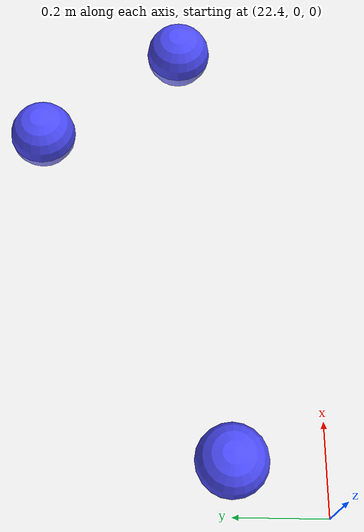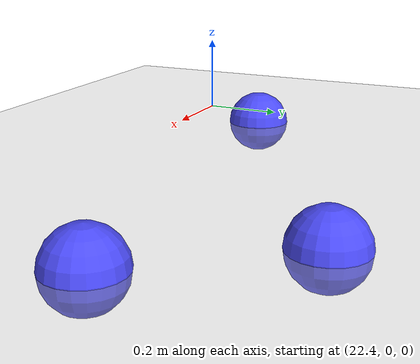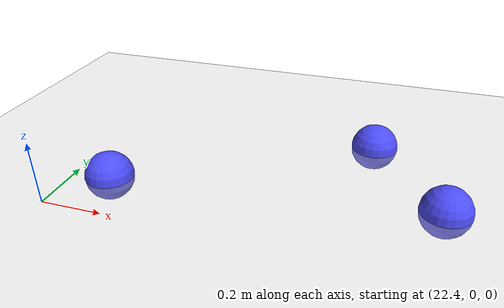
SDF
<sdf version="1.7">
 <world name="default">
  <model name="ground_plane">
   <static>1</static>
   <link name="link">
    <collision name="collision">
     <geometry><plane><normal>0 0 1</normal><size>100 100</size></plane></geometry>
     <surface>
      <contact><collide_bitmask>65535</collide_bitmask></contact>
      <friction><ode><mu>100</mu><mu2>50</mu2></ode></friction>
     </surface>
    </collision>
    <visual name="visual">
     <cast_shadows>0</cast_shadows>
     <geometry><plane><normal>0 0 1</normal><size>100 100</size></plane></geometry>
     <material>
      <script><uri>file://media/materials/scripts/gazebo.material</uri><name>Gazebo/Grey</name></script>
     </material>
    </visual>
   </link>
  </model>
  <model name="seed_blue_215">
   <link name="link">
    <inertial>
     <mass>1</mass>
     <inertia><ixx>0.1</ixx><ixy>0</ixy><ixz>0</ixz><iyy>0.1</iyy><iyz>0</iyz><izz>0.1</izz></inertia>
    </inertial>
    <visual name="visual">
     <geometry><sphere><radius>0.08</radius></sphere></geometry>
     <material>
      <script><name>Gazebo/Grey</name><uri>file://media/materials/scripts/gazebo.material</uri></script>
      <shader type="pixel"><normal_map>__default__</normal_map></shader>
      <ambient>0.3 0.3 1 1</ambient>
      <diffuse>0.7 0.7 0.7 1</diffuse>
      <specular>0.01 0.01 0.01 1</specular>
      <emissive>0 0 0 1</emissive>
     </material>
    </visual>
    <collision name="collision">
     <geometry><sphere><radius>0.0005</radius></sphere></geometry>
     <surface>
      <friction>
       <ode><mu>1</mu><mu2>1</mu2><fdir1>0 0 0</fdir1><slip1>0</slip1><slip2>0</slip2></ode>
       <torsional>
        <coefficient>1</coefficient>
        <patch_radius>0</patch_radius>
        <surface_radius>0</surface_radius>
        <use_patch_radius>1</use_patch_radius>
        <ode><slip>0</slip></ode>
       </torsional>
      </friction>
      <bounce><restitution_coefficient>0</restitution_coefficient><threshold>1e+06</threshold></bounce>
      <contact>
       <collide_without_contact>0</collide_without_contact>
       <collide_without_contact_bitmask>1</collide_without_contact_bitmask>
       <collide_bitmask>1</collide_bitmask>
       <ode>
        <soft_cfm>0</soft_cfm>
        <soft_erp>0.2</soft_erp>
        <kp>1e+13</kp>
        <kd>1</kd>
        <max_vel>0.01</max_vel>
        <min_depth>0</min_depth>
       </ode>
       <bullet>
        <split_impulse>1</split_impulse>
        <split_impulse_penetration_threshold>-0.01</split_impulse_penetration_threshold>
        <soft_cfm>0</soft_cfm>
        <soft_erp>0.2</soft_erp>
        <kp>1e+13</kp>
        <kd>1</kd>
       </bullet>
      </contact>
     </surface>
    </collision>
   </link>
   <static>0</static>
   <pose>23.317 0.647641 0.0005 0 -0 0</pose>
  </model>
  <model name="seed_blue_218">
   <link name="link">
    <inertial>
     <mass>1</mass>
     <inertia><ixx>0.1</ixx><ixy>0</ixy><ixz>0</ixz><iyy>0.1</iyy><iyz>0</iyz><izz>0.1</izz></inertia>
    </inertial>
    <visual name="visual">
     <geometry><sphere><radius>0.08</radius></sphere></geometry>
     <material>
      <script><name>Gazebo/Grey</name><uri>file://media/materials/scripts/gazebo.material</uri></script>
      <shader type="pixel"><normal_map>__default__</normal_map></shader>
      <ambient>0.3 0.3 1 1</ambient>
      <diffuse>0.7 0.7 0.7 1</diffuse>
      <specular>0.01 0.01 0.01 1</specular>
      <emissive>0 0 0 1</emissive>
     </material>
    </visual>
    <collision name="collision">
     <geometry><sphere><radius>0.0005</radius></sphere></geometry>
     <surface>
      <friction>
       <ode><mu>1</mu><mu2>1</mu2><fdir1>0 0 0</fdir1><slip1>0</slip1><slip2>0</slip2></ode>
       <torsional>
        <coefficient>1</coefficient>
        <patch_radius>0</patch_radius>
        <surface_radius>0</surface_radius>
        <use_patch_radius>1</use_patch_radius>
        <ode><slip>0</slip></ode>
       </torsional>
      </friction>
      <bounce><restitution_coefficient>0</restitution_coefficient><threshold>1e+06</threshold></bounce>
      <contact>
       <collide_without_contact>0</collide_without_contact>
       <collide_without_contact_bitmask>1</collide_without_contact_bitmask>
       <collide_bitmask>1</collide_bitmask>
       <ode>
        <soft_cfm>0</soft_cfm>
        <soft_erp>0.2</soft_erp>
        <kp>1e+13</kp>
        <kd>1</kd>
        <max_vel>0.01</max_vel>
        <min_depth>0</min_depth>
       </ode>
       <bullet>
        <split_impulse>1</split_impulse>
        <split_impulse_penetration_threshold>-0.01</split_impulse_penetration_threshold>
        <soft_cfm>0</soft_cfm>
        <soft_erp>0.2</soft_erp>
        <kp>1e+13</kp>
        <kd>1</kd>
       </bullet>
      </contact>
     </surface>
    </collision>
   </link>
   <static>0</static>
   <pose>23.5653 0.312941 0.0005 0 -0 0</pose>
  </model>
  <model name="seed_blue_219">
   <link name="link">
    <inertial>
     <mass>1</mass>
     <inertia><ixx>0.1</ixx><ixy>0</ixy><ixz>0</ixz><iyy>0.1</iyy><iyz>0</iyz><izz>0.1</izz></inertia>
    </inertial>
    <visual name="visual">
     <geometry><sphere><radius>0.08</radius></sphere></geometry>
     <material>
      <script><name>Gazebo/Grey</name><uri>file://media/materials/scripts/gazebo.material</uri></script>
      <shader type="pixel"><normal_map>__default__</normal_map></shader>
      <ambient>0.3 0.3 1 1</ambient>
      <diffuse>0.7 0.7 0.7 1</diffuse>
      <specular>0.01 0.01 0.01 1</specular>
      <emissive>0 0 0 1</emissive>
     </material>
    </visual>
    <collision name="collision">
     <geometry><sphere><radius>0.0005</radius></sphere></geometry>
     <surface>
      <friction>
       <ode><mu>1</mu><mu2>1</mu2><fdir1>0 0 0</fdir1><slip1>0</slip1><slip2>0</slip2></ode>
       <torsional>
        <coefficient>1</coefficient>
        <patch_radius>0</patch_radius>
        <surface_radius>0</surface_radius>
        <use_patch_radius>1</use_patch_radius>
        <ode><slip>0</slip></ode>
       </torsional>
      </friction>
      <bounce><restitution_coefficient>0</restitution_coefficient><threshold>1e+06</threshold></bounce>
      <contact>
       <collide_without_contact>0</collide_without_contact>
       <collide_without_contact_bitmask>1</collide_without_contact_bitmask>
       <collide_bitmask>1</collide_bitmask>
       <ode>
        <soft_cfm>0</soft_cfm>
        <soft_erp>0.2</soft_erp>
        <kp>1e+13</kp>
        <kd>1</kd>
        <max_vel>0.01</max_vel>
        <min_depth>0</min_depth>
       </ode>
       <bullet>
        <split_impulse>1</split_impulse>
        <split_impulse_penetration_threshold>-0.01</split_impulse_penetration_threshold>
        <soft_cfm>0</soft_cfm>
        <soft_erp>0.2</soft_erp>
        <kp>1e+13</kp>
        <kd>1</kd>
       </bullet>
      </contact>
     </surface>
    </collision>
   </link>
   <static>0</static>
   <pose>22.5157 0.196606 0.0005 0 -0 0</pose>
  </model>
 </world>
</sdf>
